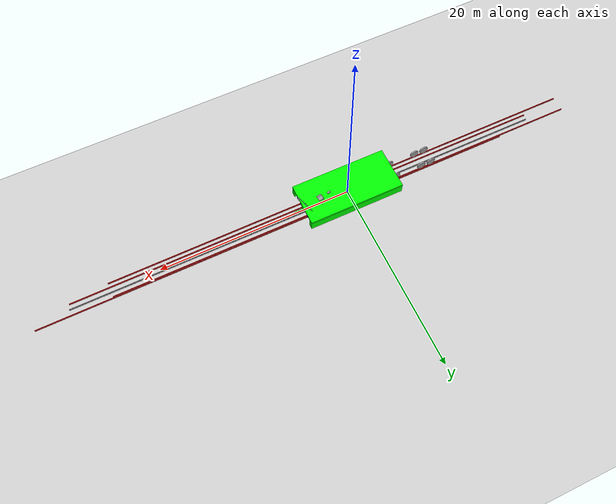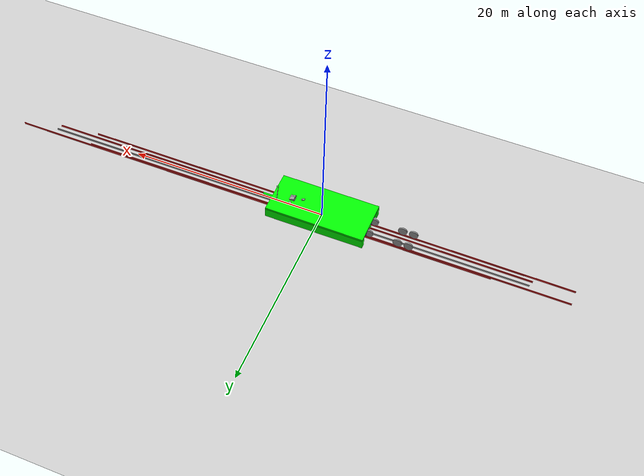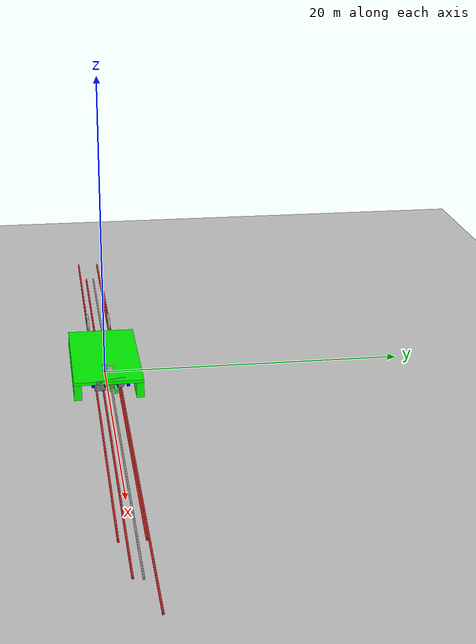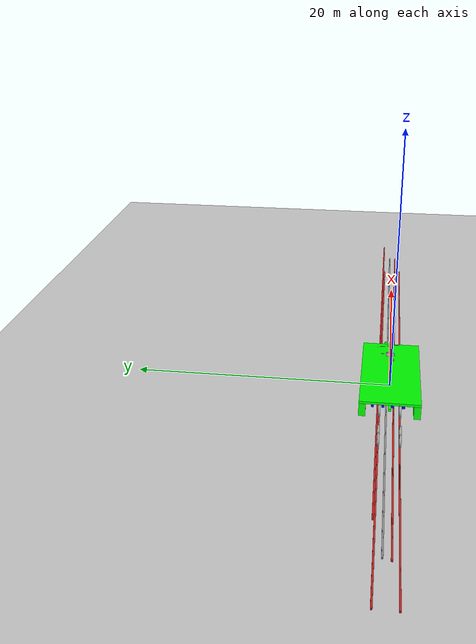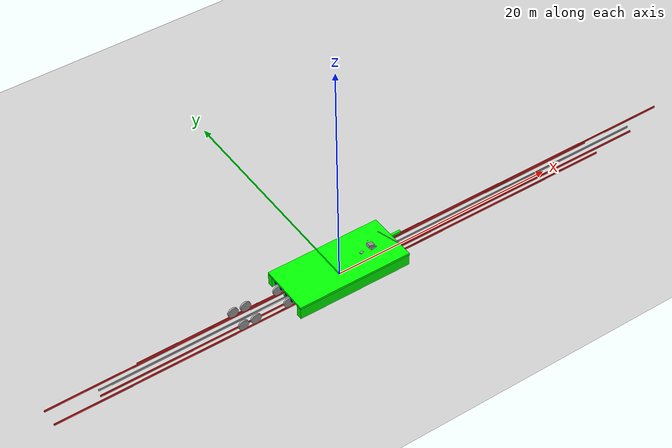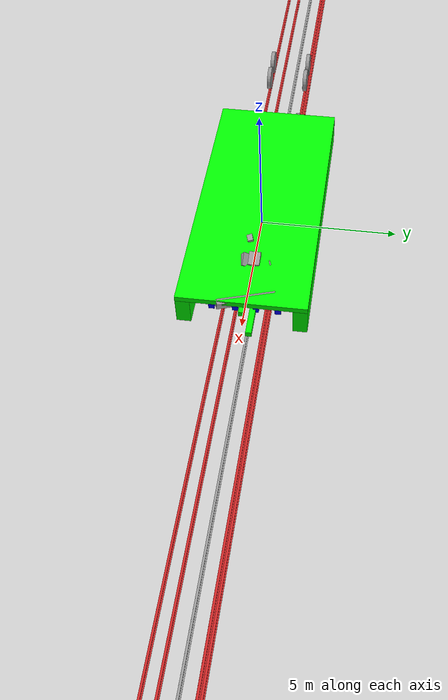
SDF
<sdf version="1.7">
 <world name="default">
  <light name="sun" type="directional">
   <pose>0 0 10 0 -0 0</pose>
   <diffuse>0.8 0.8 0.8 1</diffuse>
   <specular>0.2 0.2 0.2 1</specular>
   <attenuation>
    <range>1000</range>
    <constant>0.9</constant>
    <linear>0.01</linear>
    <quadratic>0.001</quadratic>
   </attenuation>
   <direction>-0.5 0.1 -0.9</direction>
   <spot><inner_angle>0</inner_angle><outer_angle>0</outer_angle><falloff>0</falloff></spot>
  </light>
  <model name="ground_plane">
   <static>1</static>
   <link name="link">
    <collision name="collision">
     <geometry><plane><normal>0 0 1</normal><size>100 100</size></plane></geometry>
     <surface>
      <contact><collide_bitmask>65535</collide_bitmask></contact>
      <friction><ode><mu>100</mu><mu2>50</mu2></ode></friction>
     </surface>
    </collision>
    <visual name="visual">
     <cast_shadows>0</cast_shadows>
     <geometry><plane><normal>0 0 1</normal><size>100 100</size></plane></geometry>
     <material>
      <script><uri>file://media/materials/scripts/gazebo.material</uri><name>Gazebo/Grey</name></script>
     </material>
    </visual>
   </link>
  </model>
  <gravity>0 0 -9.8</gravity>
  <magnetic_field>6e-06 2.3e-05 -4.2e-05</magnetic_field>
  <atmosphere type="adiabatic"/>
  <physics type="ode">
   <max_step_size>0.001</max_step_size>
   <real_time_factor>1</real_time_factor>
   <real_time_update_rate>1000</real_time_update_rate>
  </physics>
  <scene><ambient>0.4 0.4 0.4 1</ambient><background>0.7 0.7 0.7 1</background><shadows>1</shadows></scene>
  <spherical_coordinates>
   <surface_model>EARTH_WGS84</surface_model>
   <latitude_deg>0</latitude_deg>
   <longitude_deg>0</longitude_deg>
   <elevation>0</elevation>
   <heading_deg>0</heading_deg>
  </spherical_coordinates>
  <model name="single_track_model">
   <link name="link_0">
    <inertial>
     <mass>7800</mass>
     <inertia><ixx>1300</ixx><ixy>0</ixy><ixz>0</ixz><iyy>1300</iyy><iyz>0</iyz><izz>1300</izz></inertia>
    </inertial>
    <visual name="visual">
     <pose>0 0 0 1.5708 -0 1.5708</pose>
     <geometry>
      <mesh><uri>model://argo3_description/meshes/track.stl</uri><scale>0.001 0.001 1</scale></mesh>
     </geometry>
     <material>
      <lighting>1</lighting>
      <script><uri>file://media/materials/scripts/gazebo.material</uri><name>Gazebo/Red</name></script>
      <shader type="pixel"><normal_map>__default__</normal_map></shader>
      <ambient>1 0 0 1</ambient>
      <diffuse>0.7 0.7 0.7 1</diffuse>
      <specular>0.01 0.01 0.01 1</specular>
      <emissive>0 0 0 1</emissive>
     </material>
    </visual>
    <collision name="collision">
     <pose>0 0 0 1.5708 -0 1.5708</pose>
     <geometry>
      <mesh><uri>model://argo3_description/meshes/track.stl</uri><scale>0.001 0.001 1</scale></mesh>
     </geometry>
     <surface>
      <friction>
       <ode><mu>1</mu><mu2>1</mu2><fdir1>0 0 0</fdir1><slip1>0</slip1><slip2>0</slip2></ode>
       <torsional>
        <coefficient>1</coefficient>
        <patch_radius>0</patch_radius>
        <surface_radius>0</surface_radius>
        <use_patch_radius>1</use_patch_radius>
        <ode><slip>0</slip></ode>
       </torsional>
      </friction>
      <bounce><restitution_coefficient>0</restitution_coefficient><threshold>1e+06</threshold></bounce>
      <contact>
       <collide_without_contact>0</collide_without_contact>
       <collide_without_contact_bitmask>1</collide_without_contact_bitmask>
       <collide_bitmask>1</collide_bitmask>
       <ode>
        <soft_cfm>0</soft_cfm>
        <soft_erp>0.2</soft_erp>
        <kp>1e+13</kp>
        <kd>1</kd>
        <max_vel>0.01</max_vel>
        <min_depth>0</min_depth>
       </ode>
       <bullet>
        <split_impulse>1</split_impulse>
        <split_impulse_penetration_threshold>-0.01</split_impulse_penetration_threshold>
        <soft_cfm>0</soft_cfm>
        <soft_erp>0.2</soft_erp>
        <kp>1e+13</kp>
        <kd>1</kd>
       </bullet>
      </contact>
     </surface>
    </collision>
   </link>
   <static>1</static>
   <pose>0 0.75 0 0 -0 0</pose>
  </model>
  <model name="single_track_model_clone">
   <link name="link_0">
    <inertial>
     <mass>7800</mass>
     <inertia><ixx>1300</ixx><ixy>0</ixy><ixz>0</ixz><iyy>1300</iyy><iyz>0</iyz><izz>1300</izz></inertia>
    </inertial>
    <visual name="visual">
     <pose>0 0 0 1.5708 -0 1.5708</pose>
     <geometry>
      <mesh><uri>model://argo3_description/meshes/track.stl</uri><scale>0.001 0.001 1</scale></mesh>
     </geometry>
     <material>
      <lighting>1</lighting>
      <script><uri>file://media/materials/scripts/gazebo.material</uri><name>Gazebo/Red</name></script>
      <shader type="pixel"><normal_map>__default__</normal_map></shader>
      <ambient>1 0 0 1</ambient>
      <diffuse>0.7 0.7 0.7 1</diffuse>
      <specular>0.01 0.01 0.01 1</specular>
      <emissive>0 0 0 1</emissive>
     </material>
    </visual>
    <collision name="collision">
     <pose>0 0 0 1.5708 -0 1.5708</pose>
     <geometry>
      <mesh><uri>model://argo3_description/meshes/track.stl</uri><scale>0.001 0.001 1</scale></mesh>
     </geometry>
     <surface>
      <friction>
       <ode><mu>1</mu><mu2>1</mu2><fdir1>0 0 0</fdir1><slip1>0</slip1><slip2>0</slip2></ode>
       <torsional>
        <coefficient>1</coefficient>
        <patch_radius>0</patch_radius>
        <surface_radius>0</surface_radius>
        <use_patch_radius>1</use_patch_radius>
        <ode><slip>0</slip></ode>
       </torsional>
      </friction>
      <bounce><restitution_coefficient>0</restitution_coefficient><threshold>1e+06</threshold></bounce>
      <contact>
       <collide_without_contact>0</collide_without_contact>
       <collide_without_contact_bitmask>1</collide_without_contact_bitmask>
       <collide_bitmask>1</collide_bitmask>
       <ode>
        <soft_cfm>0</soft_cfm>
        <soft_erp>0.2</soft_erp>
        <kp>1e+13</kp>
        <kd>1</kd>
        <max_vel>0.01</max_vel>
        <min_depth>0</min_depth>
       </ode>
       <bullet>
        <split_impulse>1</split_impulse>
        <split_impulse_penetration_threshold>-0.01</split_impulse_penetration_threshold>
        <soft_cfm>0</soft_cfm>
        <soft_erp>0.2</soft_erp>
        <kp>1e+13</kp>
        <kd>1</kd>
       </bullet>
      </contact>
     </surface>
    </collision>
   </link>
   <static>1</static>
   <pose>0 -0.75 0 0 -0 0</pose>
  </model>
  <model name="train_wheels">
   <link name="link">
    <inertial>
     <mass>1</mass>
     <inertia><ixx>0.145833</ixx><ixy>0</ixy><ixz>0</ixz><iyy>0.145833</iyy><iyz>0</iyz><izz>0.125</izz></inertia>
    </inertial>
    <pose>3 0.75 0.6 0 -0 0</pose>
    <visual name="visual">
     <geometry><cylinder><radius>0.45</radius><length>0.15</length></cylinder></geometry>
     <material>
      <script><name>Gazebo/Grey</name><uri>file://media/materials/scripts/gazebo.material</uri></script>
      <shader type="pixel"><normal_map>__default__</normal_map></shader>
      <ambient>0.3 0.3 0.3 1</ambient>
      <diffuse>0.7 0.7 0.7 1</diffuse>
      <specular>0.01 0.01 0.01 1</specular>
      <emissive>0 0 0 1</emissive>
     </material>
     <pose>0 0 0 1.5708 -0 0</pose>
    </visual>
   </link>
   <link name="link_clone">
    <inertial>
     <mass>1</mass>
     <inertia><ixx>0.145833</ixx><ixy>0</ixy><ixz>0</ixz><iyy>0.145833</iyy><iyz>0</iyz><izz>0.125</izz></inertia>
    </inertial>
    <pose>1.9 0.75 0.6 0 -0 0</pose>
    <visual name="visual">
     <geometry><cylinder><radius>0.45</radius><length>0.15</length></cylinder></geometry>
     <material>
      <script><name>Gazebo/Grey</name><uri>file://media/materials/scripts/gazebo.material</uri></script>
      <shader type="pixel"><normal_map>__default__</normal_map></shader>
      <ambient>0.3 0.3 0.3 1</ambient>
      <diffuse>0.7 0.7 0.7 1</diffuse>
      <specular>0.01 0.01 0.01 1</specular>
      <emissive>0 0 0 1</emissive>
     </material>
     <pose>0 0 0 1.5708 -0 0</pose>
    </visual>
   </link>
   <link name="link_clone_0">
    <inertial>
     <mass>1</mass>
     <inertia><ixx>0.145833</ixx><ixy>0</ixy><ixz>0</ixz><iyy>0.145833</iyy><iyz>0</iyz><izz>0.125</izz></inertia>
    </inertial>
    <pose>3 -0.75 0.6 0 -0 0</pose>
    <visual name="visual">
     <geometry><cylinder><radius>0.45</radius><length>0.15</length></cylinder></geometry>
     <material>
      <script><name>Gazebo/Grey</name><uri>file://media/materials/scripts/gazebo.material</uri></script>
      <shader type="pixel"><normal_map>__default__</normal_map></shader>
      <ambient>0.3 0.3 0.3 1</ambient>
      <diffuse>0.7 0.7 0.7 1</diffuse>
      <specular>0.01 0.01 0.01 1</specular>
      <emissive>0 0 0 1</emissive>
     </material>
     <pose>0 0 0 1.5708 -0 0</pose>
    </visual>
   </link>
   <link name="link_clone_0_clone">
    <inertial>
     <mass>1</mass>
     <inertia><ixx>0.145833</ixx><ixy>0</ixy><ixz>0</ixz><iyy>0.145833</iyy><iyz>0</iyz><izz>0.125</izz></inertia>
    </inertial>
    <pose>1.9 -0.75 0.6 0 -0 0</pose>
    <visual name="visual">
     <geometry><cylinder><radius>0.45</radius><length>0.15</length></cylinder></geometry>
     <material>
      <script><name>Gazebo/Grey</name><uri>file://media/materials/scripts/gazebo.material</uri></script>
      <shader type="pixel"><normal_map>__default__</normal_map></shader>
      <ambient>0.3 0.3 0.3 1</ambient>
      <diffuse>0.7 0.7 0.7 1</diffuse>
      <specular>0.01 0.01 0.01 1</specular>
      <emissive>0 0 0 1</emissive>
     </material>
     <pose>0 0 0 1.5708 -0 0</pose>
    </visual>
   </link>
   <link name="link_clone_0_clone_clone">
    <inertial>
     <mass>1</mass>
     <inertia><ixx>0.145833</ixx><ixy>0</ixy><ixz>0</ixz><iyy>0.145833</iyy><iyz>0</iyz><izz>0.125</izz></inertia>
    </inertial>
    <pose>-1 -0.75 0.6 0 -0 0</pose>
    <visual name="visual">
     <geometry><cylinder><radius>0.45</radius><length>0.15</length></cylinder></geometry>
     <material>
      <script><name>Gazebo/Grey</name><uri>file://media/materials/scripts/gazebo.material</uri></script>
      <shader type="pixel"><normal_map>__default__</normal_map></shader>
      <ambient>0.3 0.3 0.3 1</ambient>
      <diffuse>0.7 0.7 0.7 1</diffuse>
      <specular>0.01 0.01 0.01 1</specular>
      <emissive>0 0 0 1</emissive>
     </material>
     <pose>0 0 0 1.5708 -0 0</pose>
    </visual>
   </link>
   <link name="link_clone_0_clone_clone_clone">
    <inertial>
     <mass>1</mass>
     <inertia><ixx>0.145833</ixx><ixy>0</ixy><ixz>0</ixz><iyy>0.145833</iyy><iyz>0</iyz><izz>0.125</izz></inertia>
    </inertial>
    <pose>-2.1 -0.75 0.6 0 -0 0</pose>
    <visual name="visual">
     <geometry><cylinder><radius>0.45</radius><length>0.15</length></cylinder></geometry>
     <material>
      <script><name>Gazebo/Grey</name><uri>file://media/materials/scripts/gazebo.material</uri></script>
      <shader type="pixel"><normal_map>__default__</normal_map></shader>
      <ambient>0.3 0.3 0.3 1</ambient>
      <diffuse>0.7 0.7 0.7 1</diffuse>
      <specular>0.01 0.01 0.01 1</specular>
      <emissive>0 0 0 1</emissive>
     </material>
     <pose>0 0 0 1.5708 -0 0</pose>
    </visual>
   </link>
   <link name="link_clone_clone">
    <inertial>
     <mass>1</mass>
     <inertia><ixx>0.145833</ixx><ixy>0</ixy><ixz>0</ixz><iyy>0.145833</iyy><iyz>0</iyz><izz>0.125</izz></inertia>
    </inertial>
    <pose>-1 0.75 0.6 0 -0 0</pose>
    <visual name="visual">
     <geometry><cylinder><radius>0.45</radius><length>0.15</length></cylinder></geometry>
     <material>
      <script><name>Gazebo/Grey</name><uri>file://media/materials/scripts/gazebo.material</uri></script>
      <shader type="pixel"><normal_map>__default__</normal_map></shader>
      <ambient>0.3 0.3 0.3 1</ambient>
      <diffuse>0.7 0.7 0.7 1</diffuse>
      <specular>0.01 0.01 0.01 1</specular>
      <emissive>0 0 0 1</emissive>
     </material>
     <pose>0 0 0 1.5708 -0 0</pose>
    </visual>
   </link>
   <link name="link_clone_clone_clone">
    <inertial>
     <mass>1</mass>
     <inertia><ixx>0.145833</ixx><ixy>0</ixy><ixz>0</ixz><iyy>0.145833</iyy><iyz>0</iyz><izz>0.125</izz></inertia>
    </inertial>
    <pose>-2.1 0.75 0.6 0 -0 0</pose>
    <visual name="visual">
     <geometry><cylinder><radius>0.45</radius><length>0.15</length></cylinder></geometry>
     <material>
      <script><name>Gazebo/Grey</name><uri>file://media/materials/scripts/gazebo.material</uri></script>
      <shader type="pixel"><normal_map>__default__</normal_map></shader>
      <ambient>0.3 0.3 0.3 1</ambient>
      <diffuse>0.7 0.7 0.7 1</diffuse>
      <specular>0.01 0.01 0.01 1</specular>
      <emissive>0 0 0 1</emissive>
     </material>
     <pose>0 0 0 1.5708 -0 0</pose>
    </visual>
   </link>
   <static>1</static>
  </model>
  <model name="very_low_portal_with_obstacles">
   <link name="link_0">
    <inertial>
     <mass>1</mass>
     <inertia>
      <ixx>0.166667</ixx>
      <ixy>0</ixy>
      <ixz>0</ixz>
      <iyy>0.166667</iyy>
      <iyz>0</iyz>
      <izz>0.166667</izz>
     </inertia>
    </inertial>
    <visual name="ModelPreview_1::link_0::visual_9">
     <pose>-1 0.5 0.8 0 -0 0</pose>
     <geometry><box><size>0 0 0</size></box></geometry>
     <material>
      <lighting>1</lighting>
      <script><uri>file://media/materials/scripts/gazebo.material</uri><name>Gazebo/Grey</name></script>
      <shader type="pixel"><normal_map>__default__</normal_map></shader>
      <ambient>0 1 0 1</ambient>
      <diffuse>0.7 0.7 0.7 1</diffuse>
      <specular>0.01 0.01 0.01 1</specular>
      <emissive>0 0 0 1</emissive>
     </material>
    </visual>
    <visual name="ModelPreview_1::link_0::visual_8">
     <pose>1 0.4 0.85 0 -0 0</pose>
     <geometry><box><size>10 0.2 0.2</size></box></geometry>
     <material>
      <lighting>1</lighting>
      <script><uri>file://media/materials/scripts/gazebo.material</uri><name>Gazebo/Grey</name></script>
      <shader type="pixel"><normal_map>__default__</normal_map></shader>
      <ambient>0 1 0 1</ambient>
      <diffuse>0.7 0.7 0.7 1</diffuse>
      <specular>0.01 0.01 0.01 1</specular>
      <emissive>0 0 0 1</emissive>
     </material>
    </visual>
    <visual name="ModelPreview_1::link_0::visual_7">
     <pose>0 0 0.625 0 -0 0</pose>
     <geometry><box><size>10 0.2 0.2</size></box></geometry>
     <material>
      <lighting>1</lighting>
      <script><uri>file://media/materials/scripts/gazebo.material</uri><name>Gazebo/Grey</name></script>
      <shader type="pixel"><normal_map>__default__</normal_map></shader>
      <ambient>0 1 0 1</ambient>
      <diffuse>0.7 0.7 0.7 1</diffuse>
      <specular>0.01 0.01 0.01 1</specular>
      <emissive>0 0 0 1</emissive>
     </material>
    </visual>
    <visual name="visual">
     <pose>0 2 0.5 0 -0 0</pose>
     <geometry><box><size>10 0.5 1</size></box></geometry>
     <material>
      <lighting>1</lighting>
      <script><uri>file://media/materials/scripts/gazebo.material</uri><name>Gazebo/Grey</name></script>
      <shader type="pixel"><normal_map>__default__</normal_map></shader>
      <ambient>0 1 0 1</ambient>
      <diffuse>0.7 0.7 0.7 1</diffuse>
      <specular>0.01 0.01 0.01 1</specular>
      <emissive>0 0 0 1</emissive>
     </material>
    </visual>
    <visual name="ModelPreview_2::link_0::visual_7">
     <pose>0 0.5 0.9 0 -0 0</pose>
     <geometry><box><size>10 0.2 0.2</size></box></geometry>
     <material>
      <lighting>1</lighting>
      <script><uri>file://media/materials/scripts/gazebo.material</uri><name>Gazebo/Grey</name></script>
      <shader type="pixel"><normal_map>__default__</normal_map></shader>
      <ambient>0 0 1 1</ambient>
      <diffuse>0.7 0.7 0.7 1</diffuse>
      <specular>0.01 0.01 0.01 1</specular>
      <emissive>0 0 0 1</emissive>
     </material>
    </visual>
    <visual name="ModelPreview_2::link_0::visual_3">
     <pose>0 1.25 0.9 0 -0 0</pose>
     <geometry><box><size>10 0.2 0.2</size></box></geometry>
     <material>
      <lighting>1</lighting>
      <script><uri>file://media/materials/scripts/gazebo.material</uri><name>Gazebo/Grey</name></script>
      <shader type="pixel"><normal_map>__default__</normal_map></shader>
      <ambient>0 0 1 1</ambient>
      <diffuse>0.7 0.7 0.7 1</diffuse>
      <specular>0.01 0.01 0.01 1</specular>
      <emissive>0 0 0 1</emissive>
     </material>
    </visual>
    <visual name="ModelPreview_2::link_0::visual_8">
     <pose>0 -0.2 0.9 0 -0 0</pose>
     <geometry><box><size>10 0.2 0.2</size></box></geometry>
     <material>
      <lighting>1</lighting>
      <script><uri>file://media/materials/scripts/gazebo.material</uri><name>Gazebo/Grey</name></script>
      <shader type="pixel"><normal_map>__default__</normal_map></shader>
      <ambient>0 0 1 1</ambient>
      <diffuse>0.7 0.7 0.7 1</diffuse>
      <specular>0.01 0.01 0.01 1</specular>
      <emissive>0 0 0 1</emissive>
     </material>
    </visual>
    <visual name="ModelPreview_2::link_0::visual_9">
     <pose>0 -1 0.9 0 -0 0</pose>
     <geometry><box><size>10 0.2 0.2</size></box></geometry>
     <material>
      <lighting>1</lighting>
      <script><uri>file://media/materials/scripts/gazebo.material</uri><name>Gazebo/Grey</name></script>
      <shader type="pixel"><normal_map>__default__</normal_map></shader>
      <ambient>0 0 1 1</ambient>
      <diffuse>0.7 0.7 0.7 1</diffuse>
      <specular>0.01 0.01 0.01 1</specular>
      <emissive>0 0 0 1</emissive>
     </material>
    </visual>
    <visual name="ModelPreview_2::link_0::visual_2">
     <pose>0 0 1.1 0 -0 0</pose>
     <geometry><box><size>10 4.5 0.2</size></box></geometry>
     <material>
      <lighting>1</lighting>
      <script><uri>file://media/materials/scripts/gazebo.material</uri><name>Gazebo/Grey</name></script>
      <shader type="pixel"><normal_map>__default__</normal_map></shader>
      <ambient>0 1 0 1</ambient>
      <diffuse>0.7 0.7 0.7 1</diffuse>
      <specular>0.01 0.01 0.01 1</specular>
      <emissive>0 0 0 1</emissive>
     </material>
    </visual>
    <visual name="ModelPreview_2::link_0::visual_1">
     <pose>0 -2 0.5 0 -0 0</pose>
     <geometry><box><size>10 0.5 1</size></box></geometry>
     <material>
      <lighting>1</lighting>
      <script><uri>file://media/materials/scripts/gazebo.material</uri><name>Gazebo/Grey</name></script>
      <shader type="pixel"><normal_map>__default__</normal_map></shader>
      <ambient>0 1 0 1</ambient>
      <diffuse>0.7 0.7 0.7 1</diffuse>
      <specular>0.01 0.01 0.01 1</specular>
      <emissive>0 0 0 1</emissive>
     </material>
    </visual>
   </link>
   <link name="link_0_0">
    <inertial>
     <mass>1</mass>
     <inertia>
      <ixx>0.166667</ixx>
      <ixy>0</ixy>
      <ixz>0</ixz>
      <iyy>0.166667</iyy>
      <iyz>0</iyz>
      <izz>0.166667</izz>
     </inertia>
    </inertial>
    <pose>-1 -0.5 0 0 -0 0.3</pose>
    <visual name="visual">
     <pose>0 0 0.625 0 -0 0</pose>
     <geometry><box><size>0.3 0.4 0.75</size></box></geometry>
     <material>
      <lighting>1</lighting>
      <script><uri>file://media/materials/scripts/gazebo.material</uri><name>Gazebo/Grey</name></script>
      <shader type="pixel"><normal_map>__default__</normal_map></shader>
      <ambient>0.3 0.3 0.3 1</ambient>
      <diffuse>0.7 0.7 0.7 1</diffuse>
      <specular>0.01 0.01 0.01 1</specular>
      <emissive>0 0 0 1</emissive>
     </material>
    </visual>
   </link>
   <link name="link_0_0_clone">
    <inertial>
     <mass>1</mass>
     <inertia>
      <ixx>0.166667</ixx>
      <ixy>0</ixy>
      <ixz>0</ixz>
      <iyy>0.166667</iyy>
      <iyz>0</iyz>
      <izz>0.166667</izz>
     </inertia>
    </inertial>
    <pose>-1 0.5 0 0 0 -0.3</pose>
    <gravity>0</gravity>
    <visual name="visual_0">
     <pose>0 0 0.625 0 -0 0</pose>
     <geometry><box><size>0.3 0.4 0.75</size></box></geometry>
     <material>
      <lighting>1</lighting>
      <script><uri>file://media/materials/scripts/gazebo.material</uri><name>Gazebo/Grey</name></script>
      <shader type="pixel"><normal_map>__default__</normal_map></shader>
      <ambient>0.3 0.3 0.3 1</ambient>
      <diffuse>0.7 0.7 0.7 1</diffuse>
      <specular>0.01 0.01 0.01 1</specular>
      <emissive>0 0 0 1</emissive>
     </material>
    </visual>
   </link>
   <link name="link_0_0_clone_0">
    <inertial>
     <mass>1</mass>
     <inertia>
      <ixx>0.166667</ixx>
      <ixy>0</ixy>
      <ixz>0</ixz>
      <iyy>0.166667</iyy>
      <iyz>0</iyz>
      <izz>0.166667</izz>
     </inertia>
    </inertial>
    <pose>1.97204 0.067583 0.3 0.2 -0 0.3</pose>
    <visual name="visual_0">
     <pose>0 0 0.625 0 -0 0</pose>
     <geometry><box><size>0.3 0.2 0.75</size></box></geometry>
     <material>
      <lighting>1</lighting>
      <script><uri>file://media/materials/scripts/gazebo.material</uri><name>Gazebo/Grey</name></script>
      <shader type="pixel"><normal_map>__default__</normal_map></shader>
      <ambient>0.3 0.3 0.3 1</ambient>
      <diffuse>0.7 0.7 0.7 1</diffuse>
      <specular>0.01 0.01 0.01 1</specular>
      <emissive>0 0 0 1</emissive>
     </material>
    </visual>
   </link>
   <link name="link_0_0_clone_0_clone">
    <inertial>
     <mass>1</mass>
     <inertia>
      <ixx>0.166667</ixx>
      <ixy>0</ixy>
      <ixz>0</ixz>
      <iyy>0.166667</iyy>
      <iyz>0</iyz>
      <izz>0.166667</izz>
     </inertia>
    </inertial>
    <pose>2.76815 0.185748 0.4 0 0.3 0</pose>
    <visual name="visual_0">
     <pose>0 0 0.625 0 -0 0</pose>
     <geometry><box><size>0.5 0.4 0.75</size></box></geometry>
     <material>
      <lighting>1</lighting>
      <script><uri>file://media/materials/scripts/gazebo.material</uri><name>Gazebo/Grey</name></script>
      <shader type="pixel"><normal_map>__default__</normal_map></shader>
      <ambient>0.3 0.3 0.3 1</ambient>
      <diffuse>0.7 0.7 0.7 1</diffuse>
      <specular>0.01 0.01 0.01 1</specular>
      <emissive>0 0 0 1</emissive>
     </material>
    </visual>
   </link>
   <link name="link_0_0_clone_0_clone_clone">
    <inertial>
     <mass>1</mass>
     <inertia>
      <ixx>0.166667</ixx>
      <ixy>0</ixy>
      <ixz>0</ixz>
      <iyy>0.166667</iyy>
      <iyz>0</iyz>
      <izz>0.166667</izz>
     </inertia>
    </inertial>
    <pose>2.81772 -0.505674 0.4 -0.5 0.3 0</pose>
    <visual name="visual_0">
     <pose>0 0 0.625 0 -0 0</pose>
     <geometry><box><size>0.5 0.4 0.75</size></box></geometry>
     <material>
      <lighting>1</lighting>
      <script><uri>file://media/materials/scripts/gazebo.material</uri><name>Gazebo/Grey</name></script>
      <shader type="pixel"><normal_map>__default__</normal_map></shader>
      <ambient>0.3 0.3 0.3 1</ambient>
      <diffuse>0.7 0.7 0.7 1</diffuse>
      <specular>0.01 0.01 0.01 1</specular>
      <emissive>0 0 0 1</emissive>
     </material>
    </visual>
   </link>
   <link name="link_0_0_clone_clone">
    <inertial>
     <mass>1</mass>
     <inertia>
      <ixx>0.166667</ixx>
      <ixy>0</ixy>
      <ixz>0</ixz>
      <iyy>0.166667</iyy>
      <iyz>0</iyz>
      <izz>0.166667</izz>
     </inertia>
    </inertial>
    <pose>-3 0.3 0 0 0 -0.2</pose>
    <visual name="visual_0">
     <pose>0 0 0.625 0 -0 0</pose>
     <geometry><box><size>0.3 0.4 0.75</size></box></geometry>
     <material>
      <lighting>1</lighting>
      <script><uri>file://media/materials/scripts/gazebo.material</uri><name>Gazebo/Grey</name></script>
      <shader type="pixel"><normal_map>__default__</normal_map></shader>
      <ambient>0.3 0.3 0.3 1</ambient>
      <diffuse>0.7 0.7 0.7 1</diffuse>
      <specular>0.01 0.01 0.01 1</specular>
      <emissive>0 0 0 1</emissive>
     </material>
    </visual>
   </link>
   <link name="link_0_0_clone_clone_0">
    <inertial>
     <mass>1</mass>
     <inertia>
      <ixx>0.166667</ixx>
      <ixy>0</ixy>
      <ixz>0</ixz>
      <iyy>0.166667</iyy>
      <iyz>0</iyz>
      <izz>0.166667</izz>
     </inertia>
    </inertial>
    <pose>1 0.5 0 0 -0 0.3</pose>
    <visual name="visual_0">
     <pose>0 0 0.625 0 -0 0</pose>
     <geometry><box><size>0.3 0.4 0.75</size></box></geometry>
     <material>
      <lighting>1</lighting>
      <script><uri>file://media/materials/scripts/gazebo.material</uri><name>Gazebo/Grey</name></script>
      <shader type="pixel"><normal_map>__default__</normal_map></shader>
      <ambient>0.3 0.3 0.3 1</ambient>
      <diffuse>0.7 0.7 0.7 1</diffuse>
      <specular>0.01 0.01 0.01 1</specular>
      <emissive>0 0 0 1</emissive>
     </material>
    </visual>
   </link>
   <link name="link_0_0_clone_clone_0_clone">
    <inertial>
     <mass>1</mass>
     <inertia>
      <ixx>0.166667</ixx>
      <ixy>0</ixy>
      <ixz>0</ixz>
      <iyy>0.166667</iyy>
      <iyz>0</iyz>
      <izz>0.166667</izz>
     </inertia>
    </inertial>
    <pose>1 -0.5 0 0 0 -0.3</pose>
    <visual name="visual_0">
     <pose>0 0 0.625 0 -0 0</pose>
     <geometry><box><size>0.3 0.4 0.75</size></box></geometry>
     <material>
      <lighting>1</lighting>
      <script><uri>file://media/materials/scripts/gazebo.material</uri><name>Gazebo/Grey</name></script>
      <shader type="pixel"><normal_map>__default__</normal_map></shader>
      <ambient>0.3 0.3 0.3 1</ambient>
      <diffuse>0.7 0.7 0.7 1</diffuse>
      <specular>0.01 0.01 0.01 1</specular>
      <emissive>0 0 0 1</emissive>
     </material>
    </visual>
   </link>
   <link name="link_0_0_clone_clone_0_clone_0">
    <inertial>
     <mass>1</mass>
     <inertia>
      <ixx>0.166667</ixx>
      <ixy>0</ixy>
      <ixz>0</ixz>
      <iyy>0.166667</iyy>
      <iyz>0</iyz>
      <izz>0.166667</izz>
     </inertia>
    </inertial>
    <pose>4 -0.380659 0 0 -0 0.3</pose>
    <visual name="visual_0">
     <pose>0 0 0.625 0 -0 0</pose>
     <geometry><box><size>0.3 0.4 0.75</size></box></geometry>
     <material>
      <lighting>1</lighting>
      <script><uri>file://media/materials/scripts/gazebo.material</uri><name>Gazebo/Grey</name></script>
      <shader type="pixel"><normal_map>__default__</normal_map></shader>
      <ambient>0.3 0.3 0.3 1</ambient>
      <diffuse>0.7 0.7 0.7 1</diffuse>
      <specular>0.01 0.01 0.01 1</specular>
      <emissive>0 0 0 1</emissive>
     </material>
    </visual>
   </link>
   <link name="link_0_0_clone_clone_0_clone_0_clone">
    <inertial>
     <mass>1</mass>
     <inertia>
      <ixx>0.166667</ixx>
      <ixy>0</ixy>
      <ixz>0</ixz>
      <iyy>0.166667</iyy>
      <iyz>0</iyz>
      <izz>0.166667</izz>
     </inertia>
    </inertial>
    <pose>3.09982 0.65434 0.2 0 -0 0.3</pose>
    <visual name="visual_0">
     <pose>0 0 0.625 0 -0 0</pose>
     <geometry><box><size>0.2 0.2 0.75</size></box></geometry>
     <material>
      <lighting>1</lighting>
      <script><uri>file://media/materials/scripts/gazebo.material</uri><name>Gazebo/Grey</name></script>
      <shader type="pixel"><normal_map>__default__</normal_map></shader>
      <ambient>0.3 0.3 0.3 1</ambient>
      <diffuse>0.7 0.7 0.7 1</diffuse>
      <specular>0.01 0.01 0.01 1</specular>
      <emissive>0 0 0 1</emissive>
     </material>
    </visual>
   </link>
   <link name="link_0_0_clone_clone_0_clone_0_clone_0">
    <inertial>
     <mass>1</mass>
     <inertia>
      <ixx>0.166667</ixx>
      <ixy>0</ixy>
      <ixz>0</ixz>
      <iyy>0.166667</iyy>
      <iyz>0</iyz>
      <izz>0.166667</izz>
     </inertia>
    </inertial>
    <pose>4.27032 -0.000745 0.3 0 0.5 0.3</pose>
    <visual name="visual_0">
     <pose>0 0 0.625 0 -0 0</pose>
     <geometry><box><size>0.2 2 0.75</size></box></geometry>
     <material>
      <lighting>1</lighting>
      <script><uri>file://media/materials/scripts/gazebo.material</uri><name>Gazebo/Grey</name></script>
      <shader type="pixel"><normal_map>__default__</normal_map></shader>
      <ambient>0.3 0.3 0.3 1</ambient>
      <diffuse>0.7 0.7 0.7 1</diffuse>
      <specular>0.01 0.01 0.01 1</specular>
      <emissive>0 0 0 1</emissive>
     </material>
    </visual>
   </link>
   <model name="single_track_model">
    <link name="link_0">
     <inertial>
      <mass>7800</mass>
      <inertia><ixx>1300</ixx><ixy>0</ixy><ixz>0</ixz><iyy>1300</iyy><iyz>0</iyz><izz>1300</izz></inertia>
     </inertial>
     <visual name="visual">
      <pose>0 0 0 1.5708 -0 1.5708</pose>
      <geometry>
       <mesh>
        <uri>/home/matteo/argo3_simulation_ws/src/argo3_description/meshes/track.stl</uri>
        <scale>0.001 0.001 1</scale>
       </mesh>
      </geometry>
      <material>
       <lighting>1</lighting>
       <script><uri>file://media/materials/scripts/gazebo.material</uri><name>Gazebo/Red</name></script>
       <shader type="pixel"><normal_map>__default__</normal_map></shader>
       <ambient>1 0 0 1</ambient>
       <diffuse>0.7 0.7 0.7 1</diffuse>
       <specular>0.01 0.01 0.01 1</specular>
       <emissive>0 0 0 1</emissive>
      </material>
     </visual>
     <collision name="collision">
      <pose>0 0 0 1.5708 -0 1.5708</pose>
      <geometry>
       <mesh>
        <uri>/home/matteo/argo3_simulation_ws/src/argo3_description/meshes/track.stl</uri>
        <scale>0.001 0.001 1</scale>
       </mesh>
      </geometry>
      <surface>
       <friction>
        <ode><mu>1</mu><mu2>1</mu2><fdir1>0 0 0</fdir1><slip1>0</slip1><slip2>0</slip2></ode>
        <torsional>
         <coefficient>1</coefficient>
         <patch_radius>0</patch_radius>
         <surface_radius>0</surface_radius>
         <use_patch_radius>1</use_patch_radius>
         <ode><slip>0</slip></ode>
        </torsional>
       </friction>
       <bounce><restitution_coefficient>0</restitution_coefficient><threshold>1e+06</threshold></bounce>
       <contact>
        <collide_without_contact>0</collide_without_contact>
        <collide_without_contact_bitmask>1</collide_without_contact_bitmask>
        <collide_bitmask>1</collide_bitmask>
        <ode>
         <soft_cfm>0</soft_cfm>
         <soft_erp>0.2</soft_erp>
         <kp>1e+13</kp>
         <kd>1</kd>
         <max_vel>0.01</max_vel>
         <min_depth>0</min_depth>
        </ode>
        <bullet>
         <split_impulse>1</split_impulse>
         <split_impulse_penetration_threshold>-0.01</split_impulse_penetration_threshold>
         <soft_cfm>0</soft_cfm>
         <soft_erp>0.2</soft_erp>
         <kp>1e+13</kp>
         <kd>1</kd>
        </bullet>
       </contact>
      </surface>
     </collision>
    </link>
    <static>1</static>
    <pose>7.66747 0.869815 0 0 -0 0</pose>
   </model>
   <model name="single_track_model_0">
    <link name="link_0">
     <inertial>
      <mass>7800</mass>
      <inertia><ixx>1300</ixx><ixy>0</ixy><ixz>0</ixz><iyy>1300</iyy><iyz>0</iyz><izz>1300</izz></inertia>
     </inertial>
     <visual name="visual">
      <pose>0 0 0 1.5708 -0 1.5708</pose>
      <geometry>
       <mesh>
        <uri>/home/matteo/argo3_simulation_ws/src/argo3_description/meshes/track.stl</uri>
        <scale>0.001 0.001 1</scale>
       </mesh>
      </geometry>
      <material>
       <lighting>1</lighting>
       <script><uri>file://media/materials/scripts/gazebo.material</uri><name>Gazebo/Grey</name></script>
       <shader type="pixel"><normal_map>__default__</normal_map></shader>
       <ambient>0.3 0.3 0.3 1</ambient>
       <diffuse>0.7 0.7 0.7 1</diffuse>
       <specular>0.01 0.01 0.01 1</specular>
       <emissive>0 0 0 1</emissive>
      </material>
     </visual>
     <collision name="collision">
      <pose>0 0 0 1.5708 -0 1.5708</pose>
      <geometry>
       <mesh>
        <uri>/home/matteo/argo3_simulation_ws/src/argo3_description/meshes/track.stl</uri>
        <scale>0.001 0.001 1</scale>
       </mesh>
      </geometry>
      <surface>
       <friction>
        <ode><mu>1</mu><mu2>1</mu2><fdir1>0 0 0</fdir1><slip1>0</slip1><slip2>0</slip2></ode>
        <torsional>
         <coefficient>1</coefficient>
         <patch_radius>0</patch_radius>
         <surface_radius>0</surface_radius>
         <use_patch_radius>1</use_patch_radius>
         <ode><slip>0</slip></ode>
        </torsional>
       </friction>
       <bounce><restitution_coefficient>0</restitution_coefficient><threshold>1e+06</threshold></bounce>
       <contact>
        <collide_without_contact>0</collide_without_contact>
        <collide_without_contact_bitmask>1</collide_without_contact_bitmask>
        <collide_bitmask>1</collide_bitmask>
        <ode>
         <soft_cfm>0</soft_cfm>
         <soft_erp>0.2</soft_erp>
         <kp>1e+13</kp>
         <kd>1</kd>
         <max_vel>0.01</max_vel>
         <min_depth>0</min_depth>
        </ode>
        <bullet>
         <split_impulse>1</split_impulse>
         <split_impulse_penetration_threshold>-0.01</split_impulse_penetration_threshold>
         <soft_cfm>0</soft_cfm>
         <soft_erp>0.2</soft_erp>
         <kp>1e+13</kp>
         <kd>1</kd>
        </bullet>
       </contact>
      </surface>
     </collision>
    </link>
    <static>0</static>
    <pose>4.14896 0.245996 0 0 -0 0</pose>
   </model>
   <model name="single_track_model_1">
    <link name="link_0">
     <inertial>
      <mass>7800</mass>
      <inertia><ixx>1300</ixx><ixy>0</ixy><ixz>0</ixz><iyy>1300</iyy><iyz>0</iyz><izz>1300</izz></inertia>
     </inertial>
     <visual name="visual">
      <pose>0 0 0 1.5708 -0 1.5708</pose>
      <geometry>
       <mesh>
        <uri>/home/matteo/argo3_simulation_ws/src/argo3_description/meshes/track.stl</uri>
        <scale>0.001 0.001 1</scale>
       </mesh>
      </geometry>
      <material>
       <lighting>1</lighting>
       <script><uri>file://media/materials/scripts/gazebo.material</uri><name>Gazebo/Red</name></script>
       <shader type="pixel"><normal_map>__default__</normal_map></shader>
       <ambient>1 0 0 1</ambient>
       <diffuse>0.7 0.7 0.7 1</diffuse>
       <specular>0.01 0.01 0.01 1</specular>
       <emissive>0 0 0 1</emissive>
      </material>
     </visual>
     <collision name="collision">
      <pose>0 0 0 1.5708 -0 1.5708</pose>
      <geometry>
       <mesh>
        <uri>/home/matteo/argo3_simulation_ws/src/argo3_description/meshes/track.stl</uri>
        <scale>0.001 0.001 1</scale>
       </mesh>
      </geometry>
      <surface>
       <friction>
        <ode><mu>1</mu><mu2>1</mu2><fdir1>0 0 0</fdir1><slip1>0</slip1><slip2>0</slip2></ode>
        <torsional>
         <coefficient>1</coefficient>
         <patch_radius>0</patch_radius>
         <surface_radius>0</surface_radius>
         <use_patch_radius>1</use_patch_radius>
         <ode><slip>0</slip></ode>
        </torsional>
       </friction>
       <bounce><restitution_coefficient>0</restitution_coefficient><threshold>1e+06</threshold></bounce>
       <contact>
        <collide_without_contact>0</collide_without_contact>
        <collide_without_contact_bitmask>1</collide_without_contact_bitmask>
        <collide_bitmask>1</collide_bitmask>
        <ode>
         <soft_cfm>0</soft_cfm>
         <soft_erp>0.2</soft_erp>
         <kp>1e+13</kp>
         <kd>1</kd>
         <max_vel>0.01</max_vel>
         <min_depth>0</min_depth>
        </ode>
        <bullet>
         <split_impulse>1</split_impulse>
         <split_impulse_penetration_threshold>-0.01</split_impulse_penetration_threshold>
         <soft_cfm>0</soft_cfm>
         <soft_erp>0.2</soft_erp>
         <kp>1e+13</kp>
         <kd>1</kd>
        </bullet>
       </contact>
      </surface>
     </collision>
    </link>
    <static>1</static>
    <pose>3.99351 -0.299682 0 0 -0 0</pose>
   </model>
   <static>1</static>
  </model>
  <model name="train_wheels_clone">
   <link name="link">
    <inertial>
     <mass>1</mass>
     <inertia><ixx>0.145833</ixx><ixy>0</ixy><ixz>0</ixz><iyy>0.145833</iyy><iyz>0</iyz><izz>0.125</izz></inertia>
    </inertial>
    <pose>3 0.75 0.6 0 -0 0</pose>
    <visual name="visual">
     <geometry><cylinder><radius>0.45</radius><length>0.15</length></cylinder></geometry>
     <material>
      <script><name>Gazebo/Grey</name><uri>file://media/materials/scripts/gazebo.material</uri></script>
      <shader type="pixel"><normal_map>__default__</normal_map></shader>
      <ambient>0.3 0.3 0.3 1</ambient>
      <diffuse>0.7 0.7 0.7 1</diffuse>
      <specular>0.01 0.01 0.01 1</specular>
      <emissive>0 0 0 1</emissive>
     </material>
     <pose>0 0 0 1.5708 -0 0</pose>
    </visual>
   </link>
   <link name="link_clone">
    <inertial>
     <mass>1</mass>
     <inertia><ixx>0.145833</ixx><ixy>0</ixy><ixz>0</ixz><iyy>0.145833</iyy><iyz>0</iyz><izz>0.125</izz></inertia>
    </inertial>
    <pose>1.9 0.75 0.6 0 -0 0</pose>
    <visual name="visual">
     <geometry><cylinder><radius>0.45</radius><length>0.15</length></cylinder></geometry>
     <material>
      <script><name>Gazebo/Grey</name><uri>file://media/materials/scripts/gazebo.material</uri></script>
      <shader type="pixel"><normal_map>__default__</normal_map></shader>
      <ambient>0.3 0.3 0.3 1</ambient>
      <diffuse>0.7 0.7 0.7 1</diffuse>
      <specular>0.01 0.01 0.01 1</specular>
      <emissive>0 0 0 1</emissive>
     </material>
     <pose>0 0 0 1.5708 -0 0</pose>
    </visual>
   </link>
   <link name="link_clone_0">
    <inertial>
     <mass>1</mass>
     <inertia><ixx>0.145833</ixx><ixy>0</ixy><ixz>0</ixz><iyy>0.145833</iyy><iyz>0</iyz><izz>0.125</izz></inertia>
    </inertial>
    <pose>3 -0.75 0.6 0 -0 0</pose>
    <visual name="visual">
     <geometry><cylinder><radius>0.45</radius><length>0.15</length></cylinder></geometry>
     <material>
      <script><name>Gazebo/Grey</name><uri>file://media/materials/scripts/gazebo.material</uri></script>
      <shader type="pixel"><normal_map>__default__</normal_map></shader>
      <ambient>0.3 0.3 0.3 1</ambient>
      <diffuse>0.7 0.7 0.7 1</diffuse>
      <specular>0.01 0.01 0.01 1</specular>
      <emissive>0 0 0 1</emissive>
     </material>
     <pose>0 0 0 1.5708 -0 0</pose>
    </visual>
   </link>
   <link name="link_clone_0_clone">
    <inertial>
     <mass>1</mass>
     <inertia><ixx>0.145833</ixx><ixy>0</ixy><ixz>0</ixz><iyy>0.145833</iyy><iyz>0</iyz><izz>0.125</izz></inertia>
    </inertial>
    <pose>1.9 -0.75 0.6 0 -0 0</pose>
    <visual name="visual">
     <geometry><cylinder><radius>0.45</radius><length>0.15</length></cylinder></geometry>
     <material>
      <script><name>Gazebo/Grey</name><uri>file://media/materials/scripts/gazebo.material</uri></script>
      <shader type="pixel"><normal_map>__default__</normal_map></shader>
      <ambient>0.3 0.3 0.3 1</ambient>
      <diffuse>0.7 0.7 0.7 1</diffuse>
      <specular>0.01 0.01 0.01 1</specular>
      <emissive>0 0 0 1</emissive>
     </material>
     <pose>0 0 0 1.5708 -0 0</pose>
    </visual>
   </link>
   <link name="link_clone_0_clone_clone">
    <inertial>
     <mass>1</mass>
     <inertia><ixx>0.145833</ixx><ixy>0</ixy><ixz>0</ixz><iyy>0.145833</iyy><iyz>0</iyz><izz>0.125</izz></inertia>
    </inertial>
    <pose>-1 -0.75 0.6 0 -0 0</pose>
    <visual name="visual">
     <geometry><cylinder><radius>0.45</radius><length>0.15</length></cylinder></geometry>
     <material>
      <script><name>Gazebo/Grey</name><uri>file://media/materials/scripts/gazebo.material</uri></script>
      <shader type="pixel"><normal_map>__default__</normal_map></shader>
      <ambient>0.3 0.3 0.3 1</ambient>
      <diffuse>0.7 0.7 0.7 1</diffuse>
      <specular>0.01 0.01 0.01 1</specular>
      <emissive>0 0 0 1</emissive>
     </material>
     <pose>0 0 0 1.5708 -0 0</pose>
    </visual>
   </link>
   <link name="link_clone_0_clone_clone_clone">
    <inertial>
     <mass>1</mass>
     <inertia><ixx>0.145833</ixx><ixy>0</ixy><ixz>0</ixz><iyy>0.145833</iyy><iyz>0</iyz><izz>0.125</izz></inertia>
    </inertial>
    <pose>-2.1 -0.75 0.6 0 -0 0</pose>
    <visual name="visual">
     <geometry><cylinder><radius>0.45</radius><length>0.15</length></cylinder></geometry>
     <material>
      <script><name>Gazebo/Grey</name><uri>file://media/materials/scripts/gazebo.material</uri></script>
      <shader type="pixel"><normal_map>__default__</normal_map></shader>
      <ambient>0.3 0.3 0.3 1</ambient>
      <diffuse>0.7 0.7 0.7 1</diffuse>
      <specular>0.01 0.01 0.01 1</specular>
      <emissive>0 0 0 1</emissive>
     </material>
     <pose>0 0 0 1.5708 -0 0</pose>
    </visual>
   </link>
   <link name="link_clone_clone">
    <inertial>
     <mass>1</mass>
     <inertia><ixx>0.145833</ixx><ixy>0</ixy><ixz>0</ixz><iyy>0.145833</iyy><iyz>0</iyz><izz>0.125</izz></inertia>
    </inertial>
    <pose>-1 0.75 0.6 0 -0 0</pose>
    <visual name="visual">
     <geometry><cylinder><radius>0.45</radius><length>0.15</length></cylinder></geometry>
     <material>
      <script><name>Gazebo/Grey</name><uri>file://media/materials/scripts/gazebo.material</uri></script>
      <shader type="pixel"><normal_map>__default__</normal_map></shader>
      <ambient>0.3 0.3 0.3 1</ambient>
      <diffuse>0.7 0.7 0.7 1</diffuse>
      <specular>0.01 0.01 0.01 1</specular>
      <emissive>0 0 0 1</emissive>
     </material>
     <pose>0 0 0 1.5708 -0 0</pose>
    </visual>
   </link>
   <link name="link_clone_clone_clone">
    <inertial>
     <mass>1</mass>
     <inertia><ixx>0.145833</ixx><ixy>0</ixy><ixz>0</ixz><iyy>0.145833</iyy><iyz>0</iyz><izz>0.125</izz></inertia>
    </inertial>
    <pose>-2.1 0.75 0.6 0 -0 0</pose>
    <visual name="visual">
     <geometry><cylinder><radius>0.45</radius><length>0.15</length></cylinder></geometry>
     <material>
      <script><name>Gazebo/Grey</name><uri>file://media/materials/scripts/gazebo.material</uri></script>
      <shader type="pixel"><normal_map>__default__</normal_map></shader>
      <ambient>0.3 0.3 0.3 1</ambient>
      <diffuse>0.7 0.7 0.7 1</diffuse>
      <specular>0.01 0.01 0.01 1</specular>
      <emissive>0 0 0 1</emissive>
     </material>
     <pose>0 0 0 1.5708 -0 0</pose>
    </visual>
   </link>
   <static>1</static>
   <pose>-7 0 0 0 -0 0</pose>
  </model>
 </world>
</sdf>
